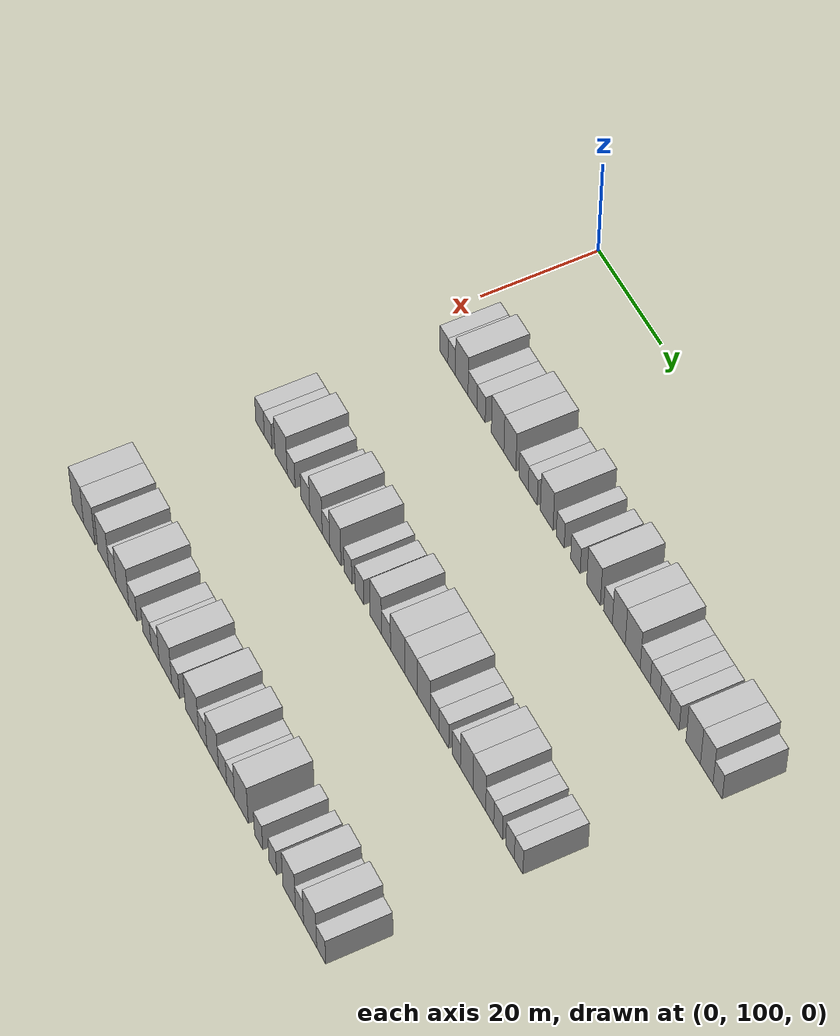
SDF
<sdf version="1.6">
 <world name="default">
  <model name="building_95">
   <static>1</static>
   <pose>25.0000 107.8113 0 0.000000 0.000000 0.000000</pose>
   <link name="link">
    <pose>0 0 3.00 0 0 0</pose>
    <collision name="collision"><geometry><box><size>10.0000 2.7142 6.0000</size></box></geometry></collision>
    <visual name="visual">
     <cast_shadows>0</cast_shadows>
     <geometry><box><size>10.0000 2.7142 6.0000</size></box></geometry>
     <material>
      <script>
       <uri>model://HANNAS_wall/materials/scripts</uri>
       <uri>model://HANNAS_wall/materials/textures</uri>
       <name>vrc/HANNAS_wall</name>
      </script>
     </material>
    </visual>
   </link>
  </model>
  <model name="building_96">
   <static>1</static>
   <pose>25.0000 110.4083 0 0.000000 0.000000 0.000000</pose>
   <link name="link">
    <pose>0 0 3.00 0 0 0</pose>
    <collision name="collision"><geometry><box><size>10.0000 2.4797 6.0000</size></box></geometry></collision>
    <visual name="visual">
     <cast_shadows>0</cast_shadows>
     <geometry><box><size>10.0000 2.4797 6.0000</size></box></geometry>
     <material>
      <script>
       <uri>model://HANNAS_wall/materials/scripts</uri>
       <uri>model://HANNAS_wall/materials/textures</uri>
       <name>vrc/HANNAS_wall</name>
      </script>
     </material>
    </visual>
   </link>
  </model>
  <model name="building_97">
   <static>1</static>
   <pose>25.0000 113.7216 0 0.000000 0.000000 0.000000</pose>
   <link name="link">
    <pose>0 0 4.50 0 0 0</pose>
    <collision name="collision"><geometry><box><size>10.0000 4.1471 9.0000</size></box></geometry></collision>
    <visual name="visual">
     <cast_shadows>0</cast_shadows>
     <geometry><box><size>10.0000 4.1471 9.0000</size></box></geometry>
     <material>
      <script>
       <uri>model://HANNAS_wall/materials/scripts</uri>
       <uri>model://HANNAS_wall/materials/textures</uri>
       <name>vrc/HANNAS_wall</name>
      </script>
     </material>
    </visual>
   </link>
  </model>
  <model name="building_98">
   <static>1</static>
   <pose>25.0000 117.2621 0 0.000000 0.000000 0.000000</pose>
   <link name="link">
    <pose>0 0 3.00 0 0 0</pose>
    <collision name="collision"><geometry><box><size>10.0000 2.9338 6.0000</size></box></geometry></collision>
    <visual name="visual">
     <cast_shadows>0</cast_shadows>
     <geometry><box><size>10.0000 2.9338 6.0000</size></box></geometry>
     <material>
      <script>
       <uri>model://HANNAS_wall/materials/scripts</uri>
       <uri>model://HANNAS_wall/materials/textures</uri>
       <name>vrc/HANNAS_wall</name>
      </script>
     </material>
    </visual>
   </link>
  </model>
  <model name="building_99">
   <static>1</static>
   <pose>25.0000 120.0552 0 0.000000 0.000000 0.000000</pose>
   <link name="link">
    <pose>0 0 3.00 0 0 0</pose>
    <collision name="collision"><geometry><box><size>10.0000 2.6524 6.0000</size></box></geometry></collision>
    <visual name="visual">
     <cast_shadows>0</cast_shadows>
     <geometry><box><size>10.0000 2.6524 6.0000</size></box></geometry>
     <material>
      <script>
       <uri>model://HANNAS_wall/materials/scripts</uri>
       <uri>model://HANNAS_wall/materials/textures</uri>
       <name>vrc/HANNAS_wall</name>
      </script>
     </material>
    </visual>
   </link>
  </model>
  <model name="building_100">
   <static>1</static>
   <pose>25.0000 125.4023 0 0.000000 0.000000 0.000000</pose>
   <link name="link">
    <pose>0 0 4.50 0 0 0</pose>
    <collision name="collision"><geometry><box><size>10.0000 4.0417 9.0000</size></box></geometry></collision>
    <visual name="visual">
     <cast_shadows>0</cast_shadows>
     <geometry><box><size>10.0000 4.0417 9.0000</size></box></geometry>
     <material>
      <script>
       <uri>model://HANNAS_wall/materials/scripts</uri>
       <uri>model://HANNAS_wall/materials/textures</uri>
       <name>vrc/HANNAS_wall</name>
      </script>
     </material>
    </visual>
   </link>
  </model>
  <model name="building_101">
   <static>1</static>
   <pose>25.0000 129.3296 0 0.000000 0.000000 0.000000</pose>
   <link name="link">
    <pose>0 0 4.50 0 0 0</pose>
    <collision name="collision"><geometry><box><size>10.0000 3.8129 9.0000</size></box></geometry></collision>
    <visual name="visual">
     <cast_shadows>0</cast_shadows>
     <geometry><box><size>10.0000 3.8129 9.0000</size></box></geometry>
     <material>
      <script>
       <uri>model://HANNAS_wall/materials/scripts</uri>
       <uri>model://HANNAS_wall/materials/textures</uri>
       <name>vrc/HANNAS_wall</name>
      </script>
     </material>
    </visual>
   </link>
  </model>
  <model name="building_102">
   <static>1</static>
   <pose>25.0000 133.7003 0 0.000000 0.000000 0.000000</pose>
   <link name="link">
    <pose>0 0 3.00 0 0 0</pose>
    <collision name="collision"><geometry><box><size>10.0000 2.9286 6.0000</size></box></geometry></collision>
    <visual name="visual">
     <cast_shadows>0</cast_shadows>
     <geometry><box><size>10.0000 2.9286 6.0000</size></box></geometry>
     <material>
      <script>
       <uri>model://HANNAS_wall/materials/scripts</uri>
       <uri>model://HANNAS_wall/materials/textures</uri>
       <name>vrc/HANNAS_wall</name>
      </script>
     </material>
    </visual>
   </link>
  </model>
  <model name="building_103">
   <static>1</static>
   <pose>25.0000 136.5817 0 0.000000 0.000000 0.000000</pose>
   <link name="link">
    <pose>0 0 3.00 0 0 0</pose>
    <collision name="collision"><geometry><box><size>10.0000 2.8342 6.0000</size></box></geometry></collision>
    <visual name="visual">
     <cast_shadows>0</cast_shadows>
     <geometry><box><size>10.0000 2.8342 6.0000</size></box></geometry>
     <material>
      <script>
       <uri>model://HANNAS_wall/materials/scripts</uri>
       <uri>model://HANNAS_wall/materials/textures</uri>
       <name>vrc/HANNAS_wall</name>
      </script>
     </material>
    </visual>
   </link>
  </model>
  <model name="building_104">
   <static>1</static>
   <pose>25.0000 140.9879 0 0.000000 0.000000 0.000000</pose>
   <link name="link">
    <pose>0 0 4.50 0 0 0</pose>
    <collision name="collision"><geometry><box><size>10.0000 3.9781 9.0000</size></box></geometry></collision>
    <visual name="visual">
     <cast_shadows>0</cast_shadows>
     <geometry><box><size>10.0000 3.9781 9.0000</size></box></geometry>
     <material>
      <script>
       <uri>model://HANNAS_wall/materials/scripts</uri>
       <uri>model://HANNAS_wall/materials/textures</uri>
       <name>vrc/HANNAS_wall</name>
      </script>
     </material>
    </visual>
   </link>
  </model>
  <model name="building_105">
   <static>1</static>
   <pose>25.0000 145.2182 0 0.000000 0.000000 0.000000</pose>
   <link name="link">
    <pose>0 0 3.00 0 0 0</pose>
    <collision name="collision"><geometry><box><size>10.0000 2.4827 6.0000</size></box></geometry></collision>
    <visual name="visual">
     <cast_shadows>0</cast_shadows>
     <geometry><box><size>10.0000 2.4827 6.0000</size></box></geometry>
     <material>
      <script>
       <uri>model://HANNAS_wall/materials/scripts</uri>
       <uri>model://HANNAS_wall/materials/textures</uri>
       <name>vrc/HANNAS_wall</name>
      </script>
     </material>
    </visual>
   </link>
  </model>
  <model name="building_106">
   <static>1</static>
   <pose>25.0000 149.9320 0 0.000000 0.000000 0.000000</pose>
   <link name="link">
    <pose>0 0 3.00 0 0 0</pose>
    <collision name="collision"><geometry><box><size>10.0000 2.9448 6.0000</size></box></geometry></collision>
    <visual name="visual">
     <cast_shadows>0</cast_shadows>
     <geometry><box><size>10.0000 2.9448 6.0000</size></box></geometry>
     <material>
      <script>
       <uri>model://HANNAS_wall/materials/scripts</uri>
       <uri>model://HANNAS_wall/materials/textures</uri>
       <name>vrc/HANNAS_wall</name>
      </script>
     </material>
    </visual>
   </link>
  </model>
  <model name="building_107">
   <static>1</static>
   <pose>25.0000 155.4893 0 0.000000 0.000000 0.000000</pose>
   <link name="link">
    <pose>0 0 4.50 0 0 0</pose>
    <collision name="collision"><geometry><box><size>10.0000 4.1698 9.0000</size></box></geometry></collision>
    <visual name="visual">
     <cast_shadows>0</cast_shadows>
     <geometry><box><size>10.0000 4.1698 9.0000</size></box></geometry>
     <material>
      <script>
       <uri>model://HANNAS_wall/materials/scripts</uri>
       <uri>model://HANNAS_wall/materials/textures</uri>
       <name>vrc/HANNAS_wall</name>
      </script>
     </material>
    </visual>
   </link>
  </model>
  <model name="building_108">
   <static>1</static>
   <pose>25.0000 159.8929 0 0.000000 0.000000 0.000000</pose>
   <link name="link">
    <pose>0 0 3.00 0 0 0</pose>
    <collision name="collision"><geometry><box><size>10.0000 2.6373 6.0000</size></box></geometry></collision>
    <visual name="visual">
     <cast_shadows>0</cast_shadows>
     <geometry><box><size>10.0000 2.6373 6.0000</size></box></geometry>
     <material>
      <script>
       <uri>model://HANNAS_wall/materials/scripts</uri>
       <uri>model://HANNAS_wall/materials/textures</uri>
       <name>vrc/HANNAS_wall</name>
      </script>
     </material>
    </visual>
   </link>
  </model>
  <model name="building_109">
   <static>1</static>
   <pose>25.0000 163.1597 0 0.000000 0.000000 0.000000</pose>
   <link name="link">
    <pose>0 0 4.50 0 0 0</pose>
    <collision name="collision"><geometry><box><size>10.0000 3.8964 9.0000</size></box></geometry></collision>
    <visual name="visual">
     <cast_shadows>0</cast_shadows>
     <geometry><box><size>10.0000 3.8964 9.0000</size></box></geometry>
     <material>
      <script>
       <uri>model://HANNAS_wall/materials/scripts</uri>
       <uri>model://HANNAS_wall/materials/textures</uri>
       <name>vrc/HANNAS_wall</name>
      </script>
     </material>
    </visual>
   </link>
  </model>
  <model name="building_110">
   <static>1</static>
   <pose>25.0000 167.3510 0 0.000000 0.000000 0.000000</pose>
   <link name="link">
    <pose>0 0 4.50 0 0 0</pose>
    <collision name="collision"><geometry><box><size>10.0000 4.4861 9.0000</size></box></geometry></collision>
    <visual name="visual">
     <cast_shadows>0</cast_shadows>
     <geometry><box><size>10.0000 4.4861 9.0000</size></box></geometry>
     <material>
      <script>
       <uri>model://HANNAS_wall/materials/scripts</uri>
       <uri>model://HANNAS_wall/materials/textures</uri>
       <name>vrc/HANNAS_wall</name>
      </script>
     </material>
    </visual>
   </link>
  </model>
  <model name="building_111">
   <static>1</static>
   <pose>25.0000 171.0859 0 0.000000 0.000000 0.000000</pose>
   <link name="link">
    <pose>0 0 3.00 0 0 0</pose>
    <collision name="collision"><geometry><box><size>10.0000 2.9837 6.0000</size></box></geometry></collision>
    <visual name="visual">
     <cast_shadows>0</cast_shadows>
     <geometry><box><size>10.0000 2.9837 6.0000</size></box></geometry>
     <material>
      <script>
       <uri>model://HANNAS_wall/materials/scripts</uri>
       <uri>model://HANNAS_wall/materials/textures</uri>
       <name>vrc/HANNAS_wall</name>
      </script>
     </material>
    </visual>
   </link>
  </model>
  <model name="building_112">
   <static>1</static>
   <pose>25.0000 174.0235 0 0.000000 0.000000 0.000000</pose>
   <link name="link">
    <pose>0 0 3.00 0 0 0</pose>
    <collision name="collision"><geometry><box><size>10.0000 2.8915 6.0000</size></box></geometry></collision>
    <visual name="visual">
     <cast_shadows>0</cast_shadows>
     <geometry><box><size>10.0000 2.8915 6.0000</size></box></geometry>
     <material>
      <script>
       <uri>model://HANNAS_wall/materials/scripts</uri>
       <uri>model://HANNAS_wall/materials/textures</uri>
       <name>vrc/HANNAS_wall</name>
      </script>
     </material>
    </visual>
   </link>
  </model>
  <model name="building_113">
   <static>1</static>
   <pose>25.0000 176.8663 0 0.000000 0.000000 0.000000</pose>
   <link name="link">
    <pose>0 0 3.00 0 0 0</pose>
    <collision name="collision"><geometry><box><size>10.0000 2.7941 6.0000</size></box></geometry></collision>
    <visual name="visual">
     <cast_shadows>0</cast_shadows>
     <geometry><box><size>10.0000 2.7941 6.0000</size></box></geometry>
     <material>
      <script>
       <uri>model://HANNAS_wall/materials/scripts</uri>
       <uri>model://HANNAS_wall/materials/textures</uri>
       <name>vrc/HANNAS_wall</name>
      </script>
     </material>
    </visual>
   </link>
  </model>
  <model name="building_114">
   <static>1</static>
   <pose>25.0000 179.6664 0 0.000000 0.000000 0.000000</pose>
   <link name="link">
    <pose>0 0 3.00 0 0 0</pose>
    <collision name="collision"><geometry><box><size>10.0000 2.8062 6.0000</size></box></geometry></collision>
    <visual name="visual">
     <cast_shadows>0</cast_shadows>
     <geometry><box><size>10.0000 2.8062 6.0000</size></box></geometry>
     <material>
      <script>
       <uri>model://HANNAS_wall/materials/scripts</uri>
       <uri>model://HANNAS_wall/materials/textures</uri>
       <name>vrc/HANNAS_wall</name>
      </script>
     </material>
    </visual>
   </link>
  </model>
  <model name="building_115">
   <static>1</static>
   <pose>25.0000 185.1760 0 0.000000 0.000000 0.000000</pose>
   <link name="link">
    <pose>0 0 4.50 0 0 0</pose>
    <collision name="collision"><geometry><box><size>10.0000 4.2129 9.0000</size></box></geometry></collision>
    <visual name="visual">
     <cast_shadows>0</cast_shadows>
     <geometry><box><size>10.0000 4.2129 9.0000</size></box></geometry>
     <material>
      <script>
       <uri>model://HANNAS_wall/materials/scripts</uri>
       <uri>model://HANNAS_wall/materials/textures</uri>
       <name>vrc/HANNAS_wall</name>
      </script>
     </material>
    </visual>
   </link>
  </model>
  <model name="building_116">
   <static>1</static>
   <pose>25.0000 189.0975 0 0.000000 0.000000 0.000000</pose>
   <link name="link">
    <pose>0 0 4.50 0 0 0</pose>
    <collision name="collision"><geometry><box><size>10.0000 3.6302 9.0000</size></box></geometry></collision>
    <visual name="visual">
     <cast_shadows>0</cast_shadows>
     <geometry><box><size>10.0000 3.6302 9.0000</size></box></geometry>
     <material>
      <script>
       <uri>model://HANNAS_wall/materials/scripts</uri>
       <uri>model://HANNAS_wall/materials/textures</uri>
       <name>vrc/HANNAS_wall</name>
      </script>
     </material>
    </visual>
   </link>
  </model>
  <model name="building_117">
   <static>1</static>
   <pose>25.0000 192.2363 0 0.000000 0.000000 0.000000</pose>
   <link name="link">
    <pose>0 0 3.00 0 0 0</pose>
    <collision name="collision"><geometry><box><size>10.0000 2.6473 6.0000</size></box></geometry></collision>
    <visual name="visual">
     <cast_shadows>0</cast_shadows>
     <geometry><box><size>10.0000 2.6473 6.0000</size></box></geometry>
     <material>
      <script>
       <uri>model://HANNAS_wall/materials/scripts</uri>
       <uri>model://HANNAS_wall/materials/textures</uri>
       <name>vrc/HANNAS_wall</name>
      </script>
     </material>
    </visual>
   </link>
  </model>
  <model name="building_234">
   <static>1</static>
   <pose>55.0000 107.7958 0 0.000000 0.000000 0.000000</pose>
   <link name="link">
    <pose>0 0 3.00 0 0 0</pose>
    <collision name="collision"><geometry><box><size>10.0000 2.9453 6.0000</size></box></geometry></collision>
    <visual name="visual">
     <cast_shadows>0</cast_shadows>
     <geometry><box><size>10.0000 2.9453 6.0000</size></box></geometry>
     <material>
      <script>
       <uri>model://HANNAS_wall/materials/scripts</uri>
       <uri>model://HANNAS_wall/materials/textures</uri>
       <name>vrc/HANNAS_wall</name>
      </script>
     </material>
    </visual>
   </link>
  </model>
  <model name="building_235">
   <static>1</static>
   <pose>55.0000 110.5906 0 0.000000 0.000000 0.000000</pose>
   <link name="link">
    <pose>0 0 3.00 0 0 0</pose>
    <collision name="collision"><geometry><box><size>10.0000 2.6444 6.0000</size></box></geometry></collision>
    <visual name="visual">
     <cast_shadows>0</cast_shadows>
     <geometry><box><size>10.0000 2.6444 6.0000</size></box></geometry>
     <material>
      <script>
       <uri>model://HANNAS_wall/materials/scripts</uri>
       <uri>model://HANNAS_wall/materials/textures</uri>
       <name>vrc/HANNAS_wall</name>
      </script>
     </material>
    </visual>
   </link>
  </model>
  <model name="building_236">
   <static>1</static>
   <pose>55.0000 114.9920 0 0.000000 0.000000 0.000000</pose>
   <link name="link">
    <pose>0 0 4.50 0 0 0</pose>
    <collision name="collision"><geometry><box><size>10.0000 4.1583 9.0000</size></box></geometry></collision>
    <visual name="visual">
     <cast_shadows>0</cast_shadows>
     <geometry><box><size>10.0000 4.1583 9.0000</size></box></geometry>
     <material>
      <script>
       <uri>model://HANNAS_wall/materials/scripts</uri>
       <uri>model://HANNAS_wall/materials/textures</uri>
       <name>vrc/HANNAS_wall</name>
      </script>
     </material>
    </visual>
   </link>
  </model>
  <model name="building_237">
   <static>1</static>
   <pose>55.0000 118.4167 0 0.000000 0.000000 0.000000</pose>
   <link name="link">
    <pose>0 0 3.00 0 0 0</pose>
    <collision name="collision"><geometry><box><size>10.0000 2.6911 6.0000</size></box></geometry></collision>
    <visual name="visual">
     <cast_shadows>0</cast_shadows>
     <geometry><box><size>10.0000 2.6911 6.0000</size></box></geometry>
     <material>
      <script>
       <uri>model://HANNAS_wall/materials/scripts</uri>
       <uri>model://HANNAS_wall/materials/textures</uri>
       <name>vrc/HANNAS_wall</name>
      </script>
     </material>
    </visual>
   </link>
  </model>
  <model name="building_238">
   <static>1</static>
   <pose>55.0000 123.2389 0 0.000000 0.000000 0.000000</pose>
   <link name="link">
    <pose>0 0 3.00 0 0 0</pose>
    <collision name="collision"><geometry><box><size>10.0000 2.9533 6.0000</size></box></geometry></collision>
    <visual name="visual">
     <cast_shadows>0</cast_shadows>
     <geometry><box><size>10.0000 2.9533 6.0000</size></box></geometry>
     <material>
      <script>
       <uri>model://HANNAS_wall/materials/scripts</uri>
       <uri>model://HANNAS_wall/materials/textures</uri>
       <name>vrc/HANNAS_wall</name>
      </script>
     </material>
    </visual>
   </link>
  </model>
  <model name="building_239">
   <static>1</static>
   <pose>55.0000 126.8112 0 0.000000 0.000000 0.000000</pose>
   <link name="link">
    <pose>0 0 4.50 0 0 0</pose>
    <collision name="collision"><geometry><box><size>10.0000 4.1912 9.0000</size></box></geometry></collision>
    <visual name="visual">
     <cast_shadows>0</cast_shadows>
     <geometry><box><size>10.0000 4.1912 9.0000</size></box></geometry>
     <material>
      <script>
       <uri>model://HANNAS_wall/materials/scripts</uri>
       <uri>model://HANNAS_wall/materials/textures</uri>
       <name>vrc/HANNAS_wall</name>
      </script>
     </material>
    </visual>
   </link>
  </model>
  <model name="building_240">
   <static>1</static>
   <pose>55.0000 130.1512 0 0.000000 0.000000 0.000000</pose>
   <link name="link">
    <pose>0 0 3.00 0 0 0</pose>
    <collision name="collision"><geometry><box><size>10.0000 2.4889 6.0000</size></box></geometry></collision>
    <visual name="visual">
     <cast_shadows>0</cast_shadows>
     <geometry><box><size>10.0000 2.4889 6.0000</size></box></geometry>
     <material>
      <script>
       <uri>model://HANNAS_wall/materials/scripts</uri>
       <uri>model://HANNAS_wall/materials/textures</uri>
       <name>vrc/HANNAS_wall</name>
      </script>
     </material>
    </visual>
   </link>
  </model>
  <model name="building_241">
   <static>1</static>
   <pose>55.0000 133.2506 0 0.000000 0.000000 0.000000</pose>
   <link name="link">
    <pose>0 0 4.50 0 0 0</pose>
    <collision name="collision"><geometry><box><size>10.0000 3.7098 9.0000</size></box></geometry></collision>
    <visual name="visual">
     <cast_shadows>0</cast_shadows>
     <geometry><box><size>10.0000 3.7098 9.0000</size></box></geometry>
     <material>
      <script>
       <uri>model://HANNAS_wall/materials/scripts</uri>
       <uri>model://HANNAS_wall/materials/textures</uri>
       <name>vrc/HANNAS_wall</name>
      </script>
     </material>
    </visual>
   </link>
  </model>
  <model name="building_242">
   <static>1</static>
   <pose>55.0000 137.4039 0 0.000000 0.000000 0.000000</pose>
   <link name="link">
    <pose>0 0 3.00 0 0 0</pose>
    <collision name="collision"><geometry><box><size>10.0000 2.5968 6.0000</size></box></geometry></collision>
    <visual name="visual">
     <cast_shadows>0</cast_shadows>
     <geometry><box><size>10.0000 2.5968 6.0000</size></box></geometry>
     <material>
      <script>
       <uri>model://HANNAS_wall/materials/scripts</uri>
       <uri>model://HANNAS_wall/materials/textures</uri>
       <name>vrc/HANNAS_wall</name>
      </script>
     </material>
    </visual>
   </link>
  </model>
  <model name="building_243">
   <static>1</static>
   <pose>55.0000 141.1579 0 0.000000 0.000000 0.000000</pose>
   <link name="link">
    <pose>0 0 3.00 0 0 0</pose>
    <collision name="collision"><geometry><box><size>10.0000 2.9113 6.0000</size></box></geometry></collision>
    <visual name="visual">
     <cast_shadows>0</cast_shadows>
     <geometry><box><size>10.0000 2.9113 6.0000</size></box></geometry>
     <material>
      <script>
       <uri>model://HANNAS_wall/materials/scripts</uri>
       <uri>model://HANNAS_wall/materials/textures</uri>
       <name>vrc/HANNAS_wall</name>
      </script>
     </material>
    </visual>
   </link>
  </model>
  <model name="building_244">
   <static>1</static>
   <pose>55.0000 146.4562 0 0.000000 0.000000 0.000000</pose>
   <link name="link">
    <pose>0 0 4.50 0 0 0</pose>
    <collision name="collision"><geometry><box><size>10.0000 3.6852 9.0000</size></box></geometry></collision>
    <visual name="visual">
     <cast_shadows>0</cast_shadows>
     <geometry><box><size>10.0000 3.6852 9.0000</size></box></geometry>
     <material>
      <script>
       <uri>model://HANNAS_wall/materials/scripts</uri>
       <uri>model://HANNAS_wall/materials/textures</uri>
       <name>vrc/HANNAS_wall</name>
      </script>
     </material>
    </visual>
   </link>
  </model>
  <model name="building_245">
   <static>1</static>
   <pose>55.0000 149.7642 0 0.000000 0.000000 0.000000</pose>
   <link name="link">
    <pose>0 0 3.00 0 0 0</pose>
    <collision name="collision"><geometry><box><size>10.0000 2.9308 6.0000</size></box></geometry></collision>
    <visual name="visual">
     <cast_shadows>0</cast_shadows>
     <geometry><box><size>10.0000 2.9308 6.0000</size></box></geometry>
     <material>
      <script>
       <uri>model://HANNAS_wall/materials/scripts</uri>
       <uri>model://HANNAS_wall/materials/textures</uri>
       <name>vrc/HANNAS_wall</name>
      </script>
     </material>
    </visual>
   </link>
  </model>
  <model name="building_246">
   <static>1</static>
   <pose>55.0000 153.4788 0 0.000000 0.000000 0.000000</pose>
   <link name="link">
    <pose>0 0 4.50 0 0 0</pose>
    <collision name="collision"><geometry><box><size>10.0000 4.4985 9.0000</size></box></geometry></collision>
    <visual name="visual">
     <cast_shadows>0</cast_shadows>
     <geometry><box><size>10.0000 4.4985 9.0000</size></box></geometry>
     <material>
      <script>
       <uri>model://HANNAS_wall/materials/scripts</uri>
       <uri>model://HANNAS_wall/materials/textures</uri>
       <name>vrc/HANNAS_wall</name>
      </script>
     </material>
    </visual>
   </link>
  </model>
  <model name="building_247">
   <static>1</static>
   <pose>55.0000 157.6905 0 0.000000 0.000000 0.000000</pose>
   <link name="link">
    <pose>0 0 4.50 0 0 0</pose>
    <collision name="collision"><geometry><box><size>10.0000 3.9249 9.0000</size></box></geometry></collision>
    <visual name="visual">
     <cast_shadows>0</cast_shadows>
     <geometry><box><size>10.0000 3.9249 9.0000</size></box></geometry>
     <material>
      <script>
       <uri>model://HANNAS_wall/materials/scripts</uri>
       <uri>model://HANNAS_wall/materials/textures</uri>
       <name>vrc/HANNAS_wall</name>
      </script>
     </material>
    </visual>
   </link>
  </model>
  <model name="building_248">
   <static>1</static>
   <pose>55.0000 161.7054 0 0.000000 0.000000 0.000000</pose>
   <link name="link">
    <pose>0 0 4.50 0 0 0</pose>
    <collision name="collision"><geometry><box><size>10.0000 4.1050 9.0000</size></box></geometry></collision>
    <visual name="visual">
     <cast_shadows>0</cast_shadows>
     <geometry><box><size>10.0000 4.1050 9.0000</size></box></geometry>
     <material>
      <script>
       <uri>model://HANNAS_wall/materials/scripts</uri>
       <uri>model://HANNAS_wall/materials/textures</uri>
       <name>vrc/HANNAS_wall</name>
      </script>
     </material>
    </visual>
   </link>
  </model>
  <model name="building_249">
   <static>1</static>
   <pose>55.0000 165.1675 0 0.000000 0.000000 0.000000</pose>
   <link name="link">
    <pose>0 0 3.00 0 0 0</pose>
    <collision name="collision"><geometry><box><size>10.0000 2.8191 6.0000</size></box></geometry></collision>
    <visual name="visual">
     <cast_shadows>0</cast_shadows>
     <geometry><box><size>10.0000 2.8191 6.0000</size></box></geometry>
     <material>
      <script>
       <uri>model://HANNAS_wall/materials/scripts</uri>
       <uri>model://HANNAS_wall/materials/textures</uri>
       <name>vrc/HANNAS_wall</name>
      </script>
     </material>
    </visual>
   </link>
  </model>
  <model name="building_250">
   <static>1</static>
   <pose>55.0000 168.0660 0 0.000000 0.000000 0.000000</pose>
   <link name="link">
    <pose>0 0 3.00 0 0 0</pose>
    <collision name="collision"><geometry><box><size>10.0000 2.9779 6.0000</size></box></geometry></collision>
    <visual name="visual">
     <cast_shadows>0</cast_shadows>
     <geometry><box><size>10.0000 2.9779 6.0000</size></box></geometry>
     <material>
      <script>
       <uri>model://HANNAS_wall/materials/scripts</uri>
       <uri>model://HANNAS_wall/materials/textures</uri>
       <name>vrc/HANNAS_wall</name>
      </script>
     </material>
    </visual>
   </link>
  </model>
  <model name="building_251">
   <static>1</static>
   <pose>55.0000 171.8572 0 0.000000 0.000000 0.000000</pose>
   <link name="link">
    <pose>0 0 3.00 0 0 0</pose>
    <collision name="collision"><geometry><box><size>10.0000 2.6045 6.0000</size></box></geometry></collision>
    <visual name="visual">
     <cast_shadows>0</cast_shadows>
     <geometry><box><size>10.0000 2.6045 6.0000</size></box></geometry>
     <material>
      <script>
       <uri>model://HANNAS_wall/materials/scripts</uri>
       <uri>model://HANNAS_wall/materials/textures</uri>
       <name>vrc/HANNAS_wall</name>
      </script>
     </material>
    </visual>
   </link>
  </model>
  <model name="building_252">
   <static>1</static>
   <pose>55.0000 175.0984 0 0.000000 0.000000 0.000000</pose>
   <link name="link">
    <pose>0 0 4.50 0 0 0</pose>
    <collision name="collision"><geometry><box><size>10.0000 3.8780 9.0000</size></box></geometry></collision>
    <visual name="visual">
     <cast_shadows>0</cast_shadows>
     <geometry><box><size>10.0000 3.8780 9.0000</size></box></geometry>
     <material>
      <script>
       <uri>model://HANNAS_wall/materials/scripts</uri>
       <uri>model://HANNAS_wall/materials/textures</uri>
       <name>vrc/HANNAS_wall</name>
      </script>
     </material>
    </visual>
   </link>
  </model>
  <model name="building_253">
   <static>1</static>
   <pose>55.0000 178.9706 0 0.000000 0.000000 0.000000</pose>
   <link name="link">
    <pose>0 0 4.50 0 0 0</pose>
    <collision name="collision"><geometry><box><size>10.0000 3.8664 9.0000</size></box></geometry></collision>
    <visual name="visual">
     <cast_shadows>0</cast_shadows>
     <geometry><box><size>10.0000 3.8664 9.0000</size></box></geometry>
     <material>
      <script>
       <uri>model://HANNAS_wall/materials/scripts</uri>
       <uri>model://HANNAS_wall/materials/textures</uri>
       <name>vrc/HANNAS_wall</name>
      </script>
     </material>
    </visual>
   </link>
  </model>
  <model name="building_254">
   <static>1</static>
   <pose>55.0000 182.1245 0 0.000000 0.000000 0.000000</pose>
   <link name="link">
    <pose>0 0 3.00 0 0 0</pose>
    <collision name="collision"><geometry><box><size>10.0000 2.4413 6.0000</size></box></geometry></collision>
    <visual name="visual">
     <cast_shadows>0</cast_shadows>
     <geometry><box><size>10.0000 2.4413 6.0000</size></box></geometry>
     <material>
      <script>
       <uri>model://HANNAS_wall/materials/scripts</uri>
       <uri>model://HANNAS_wall/materials/textures</uri>
       <name>vrc/HANNAS_wall</name>
      </script>
     </material>
    </visual>
   </link>
  </model>
  <model name="building_255">
   <static>1</static>
   <pose>55.0000 184.6578 0 0.000000 0.000000 0.000000</pose>
   <link name="link">
    <pose>0 0 3.00 0 0 0</pose>
    <collision name="collision"><geometry><box><size>10.0000 2.6255 6.0000</size></box></geometry></collision>
    <visual name="visual">
     <cast_shadows>0</cast_shadows>
     <geometry><box><size>10.0000 2.6255 6.0000</size></box></geometry>
     <material>
      <script>
       <uri>model://HANNAS_wall/materials/scripts</uri>
       <uri>model://HANNAS_wall/materials/textures</uri>
       <name>vrc/HANNAS_wall</name>
      </script>
     </material>
    </visual>
   </link>
  </model>
  <model name="building_256">
   <static>1</static>
   <pose>55.0000 188.2597 0 0.000000 0.000000 0.000000</pose>
   <link name="link">
    <pose>0 0 3.00 0 0 0</pose>
    <collision name="collision"><geometry><box><size>10.0000 2.5782 6.0000</size></box></geometry></collision>
    <visual name="visual">
     <cast_shadows>0</cast_shadows>
     <geometry><box><size>10.0000 2.5782 6.0000</size></box></geometry>
     <material>
      <script>
       <uri>model://HANNAS_wall/materials/scripts</uri>
       <uri>model://HANNAS_wall/materials/textures</uri>
       <name>vrc/HANNAS_wall</name>
      </script>
     </material>
    </visual>
   </link>
  </model>
  <model name="building_257">
   <static>1</static>
   <pose>55.0000 190.8240 0 0.000000 0.000000 0.000000</pose>
   <link name="link">
    <pose>0 0 3.00 0 0 0</pose>
    <collision name="collision"><geometry><box><size>10.0000 2.5504 6.0000</size></box></geometry></collision>
    <visual name="visual">
     <cast_shadows>0</cast_shadows>
     <geometry><box><size>10.0000 2.5504 6.0000</size></box></geometry>
     <material>
      <script>
       <uri>model://HANNAS_wall/materials/scripts</uri>
       <uri>model://HANNAS_wall/materials/textures</uri>
       <name>vrc/HANNAS_wall</name>
      </script>
     </material>
    </visual>
   </link>
  </model>
  <model name="building_367">
   <static>1</static>
   <pose>85.0000 110.0875 0 0.000000 0.000000 0.000000</pose>
   <link name="link">
    <pose>0 0 4.50 0 0 0</pose>
    <collision name="collision"><geometry><box><size>10.0000 4.0810 9.0000</size></box></geometry></collision>
    <visual name="visual">
     <cast_shadows>0</cast_shadows>
     <geometry><box><size>10.0000 4.0810 9.0000</size></box></geometry>
     <material>
      <script>
       <uri>model://HANNAS_wall/materials/scripts</uri>
       <uri>model://HANNAS_wall/materials/textures</uri>
       <name>vrc/HANNAS_wall</name>
      </script>
     </material>
    </visual>
   </link>
  </model>
  <model name="building_368">
   <static>1</static>
   <pose>85.0000 114.1532 0 0.000000 0.000000 0.000000</pose>
   <link name="link">
    <pose>0 0 4.50 0 0 0</pose>
    <collision name="collision"><geometry><box><size>10.0000 4.0504 9.0000</size></box></geometry></collision>
    <visual name="visual">
     <cast_shadows>0</cast_shadows>
     <geometry><box><size>10.0000 4.0504 9.0000</size></box></geometry>
     <material>
      <script>
       <uri>model://HANNAS_wall/materials/scripts</uri>
       <uri>model://HANNAS_wall/materials/textures</uri>
       <name>vrc/HANNAS_wall</name>
      </script>
     </material>
    </visual>
   </link>
  </model>
  <model name="building_369">
   <static>1</static>
   <pose>85.0000 119.1474 0 0.000000 0.000000 0.000000</pose>
   <link name="link">
    <pose>0 0 4.50 0 0 0</pose>
    <collision name="collision"><geometry><box><size>10.0000 3.9379 9.0000</size></box></geometry></collision>
    <visual name="visual">
     <cast_shadows>0</cast_shadows>
     <geometry><box><size>10.0000 3.9379 9.0000</size></box></geometry>
     <material>
      <script>
       <uri>model://HANNAS_wall/materials/scripts</uri>
       <uri>model://HANNAS_wall/materials/textures</uri>
       <name>vrc/HANNAS_wall</name>
      </script>
     </material>
    </visual>
   </link>
  </model>
  <model name="building_370">
   <static>1</static>
   <pose>85.0000 122.4041 0 0.000000 0.000000 0.000000</pose>
   <link name="link">
    <pose>0 0 3.00 0 0 0</pose>
    <collision name="collision"><geometry><box><size>10.0000 2.5754 6.0000</size></box></geometry></collision>
    <visual name="visual">
     <cast_shadows>0</cast_shadows>
     <geometry><box><size>10.0000 2.5754 6.0000</size></box></geometry>
     <material>
      <script>
       <uri>model://HANNAS_wall/materials/scripts</uri>
       <uri>model://HANNAS_wall/materials/textures</uri>
       <name>vrc/HANNAS_wall</name>
      </script>
     </material>
    </visual>
   </link>
  </model>
  <model name="building_371">
   <static>1</static>
   <pose>85.0000 125.8906 0 0.000000 0.000000 0.000000</pose>
   <link name="link">
    <pose>0 0 4.50 0 0 0</pose>
    <collision name="collision"><geometry><box><size>10.0000 4.3977 9.0000</size></box></geometry></collision>
    <visual name="visual">
     <cast_shadows>0</cast_shadows>
     <geometry><box><size>10.0000 4.3977 9.0000</size></box></geometry>
     <material>
      <script>
       <uri>model://HANNAS_wall/materials/scripts</uri>
       <uri>model://HANNAS_wall/materials/textures</uri>
       <name>vrc/HANNAS_wall</name>
      </script>
     </material>
    </visual>
   </link>
  </model>
  <model name="building_372">
   <static>1</static>
   <pose>85.0000 129.5220 0 0.000000 0.000000 0.000000</pose>
   <link name="link">
    <pose>0 0 3.00 0 0 0</pose>
    <collision name="collision"><geometry><box><size>10.0000 2.8650 6.0000</size></box></geometry></collision>
    <visual name="visual">
     <cast_shadows>0</cast_shadows>
     <geometry><box><size>10.0000 2.8650 6.0000</size></box></geometry>
     <material>
      <script>
       <uri>model://HANNAS_wall/materials/scripts</uri>
       <uri>model://HANNAS_wall/materials/textures</uri>
       <name>vrc/HANNAS_wall</name>
      </script>
     </material>
    </visual>
   </link>
  </model>
  <model name="building_373">
   <static>1</static>
   <pose>85.0000 134.4018 0 0.000000 0.000000 0.000000</pose>
   <link name="link">
    <pose>0 0 3.00 0 0 0</pose>
    <collision name="collision"><geometry><box><size>10.0000 2.8948 6.0000</size></box></geometry></collision>
    <visual name="visual">
     <cast_shadows>0</cast_shadows>
     <geometry><box><size>10.0000 2.8948 6.0000</size></box></geometry>
     <material>
      <script>
       <uri>model://HANNAS_wall/materials/scripts</uri>
       <uri>model://HANNAS_wall/materials/textures</uri>
       <name>vrc/HANNAS_wall</name>
      </script>
     </material>
    </visual>
   </link>
  </model>
  <model name="building_374">
   <static>1</static>
   <pose>85.0000 137.2217 0 0.000000 0.000000 0.000000</pose>
   <link name="link">
    <pose>0 0 3.00 0 0 0</pose>
    <collision name="collision"><geometry><box><size>10.0000 2.7450 6.0000</size></box></geometry></collision>
    <visual name="visual">
     <cast_shadows>0</cast_shadows>
     <geometry><box><size>10.0000 2.7450 6.0000</size></box></geometry>
     <material>
      <script>
       <uri>model://HANNAS_wall/materials/scripts</uri>
       <uri>model://HANNAS_wall/materials/textures</uri>
       <name>vrc/HANNAS_wall</name>
      </script>
     </material>
    </visual>
   </link>
  </model>
  <model name="building_375">
   <static>1</static>
   <pose>85.0000 140.7446 0 0.000000 0.000000 0.000000</pose>
   <link name="link">
    <pose>0 0 4.50 0 0 0</pose>
    <collision name="collision"><geometry><box><size>10.0000 4.3008 9.0000</size></box></geometry></collision>
    <visual name="visual">
     <cast_shadows>0</cast_shadows>
     <geometry><box><size>10.0000 4.3008 9.0000</size></box></geometry>
     <material>
      <script>
       <uri>model://HANNAS_wall/materials/scripts</uri>
       <uri>model://HANNAS_wall/materials/textures</uri>
       <name>vrc/HANNAS_wall</name>
      </script>
     </material>
    </visual>
   </link>
  </model>
  <model name="building_376">
   <static>1</static>
   <pose>85.0000 144.2195 0 0.000000 0.000000 0.000000</pose>
   <link name="link">
    <pose>0 0 3.00 0 0 0</pose>
    <collision name="collision"><geometry><box><size>10.0000 2.6490 6.0000</size></box></geometry></collision>
    <visual name="visual">
     <cast_shadows>0</cast_shadows>
     <geometry><box><size>10.0000 2.6490 6.0000</size></box></geometry>
     <material>
      <script>
       <uri>model://HANNAS_wall/materials/scripts</uri>
       <uri>model://HANNAS_wall/materials/textures</uri>
       <name>vrc/HANNAS_wall</name>
      </script>
     </material>
    </visual>
   </link>
  </model>
  <model name="building_377">
   <static>1</static>
   <pose>85.0000 149.7637 0 0.000000 0.000000 0.000000</pose>
   <link name="link">
    <pose>0 0 4.50 0 0 0</pose>
    <collision name="collision"><geometry><box><size>10.0000 4.4394 9.0000</size></box></geometry></collision>
    <visual name="visual">
     <cast_shadows>0</cast_shadows>
     <geometry><box><size>10.0000 4.4394 9.0000</size></box></geometry>
     <material>
      <script>
       <uri>model://HANNAS_wall/materials/scripts</uri>
       <uri>model://HANNAS_wall/materials/textures</uri>
       <name>vrc/HANNAS_wall</name>
      </script>
     </material>
    </visual>
   </link>
  </model>
  <model name="building_378">
   <static>1</static>
   <pose>85.0000 153.3556 0 0.000000 0.000000 0.000000</pose>
   <link name="link">
    <pose>0 0 3.00 0 0 0</pose>
    <collision name="collision"><geometry><box><size>10.0000 2.7444 6.0000</size></box></geometry></collision>
    <visual name="visual">
     <cast_shadows>0</cast_shadows>
     <geometry><box><size>10.0000 2.7444 6.0000</size></box></geometry>
     <material>
      <script>
       <uri>model://HANNAS_wall/materials/scripts</uri>
       <uri>model://HANNAS_wall/materials/textures</uri>
       <name>vrc/HANNAS_wall</name>
      </script>
     </material>
    </visual>
   </link>
  </model>
  <model name="building_379">
   <static>1</static>
   <pose>85.0000 156.6523 0 0.000000 0.000000 0.000000</pose>
   <link name="link">
    <pose>0 0 4.50 0 0 0</pose>
    <collision name="collision"><geometry><box><size>10.0000 3.8489 9.0000</size></box></geometry></collision>
    <visual name="visual">
     <cast_shadows>0</cast_shadows>
     <geometry><box><size>10.0000 3.8489 9.0000</size></box></geometry>
     <material>
      <script>
       <uri>model://HANNAS_wall/materials/scripts</uri>
       <uri>model://HANNAS_wall/materials/textures</uri>
       <name>vrc/HANNAS_wall</name>
      </script>
     </material>
    </visual>
   </link>
  </model>
  <model name="building_380">
   <static>1</static>
   <pose>85.0000 159.9048 0 0.000000 0.000000 0.000000</pose>
   <link name="link">
    <pose>0 0 3.00 0 0 0</pose>
    <collision name="collision"><geometry><box><size>10.0000 2.6561 6.0000</size></box></geometry></collision>
    <visual name="visual">
     <cast_shadows>0</cast_shadows>
     <geometry><box><size>10.0000 2.6561 6.0000</size></box></geometry>
     <material>
      <script>
       <uri>model://HANNAS_wall/materials/scripts</uri>
       <uri>model://HANNAS_wall/materials/textures</uri>
       <name>vrc/HANNAS_wall</name>
      </script>
     </material>
    </visual>
   </link>
  </model>
  <model name="building_381">
   <static>1</static>
   <pose>85.0000 162.5584 0 0.000000 0.000000 0.000000</pose>
   <link name="link">
    <pose>0 0 3.00 0 0 0</pose>
    <collision name="collision"><geometry><box><size>10.0000 2.6511 6.0000</size></box></geometry></collision>
    <visual name="visual">
     <cast_shadows>0</cast_shadows>
     <geometry><box><size>10.0000 2.6511 6.0000</size></box></geometry>
     <material>
      <script>
       <uri>model://HANNAS_wall/materials/scripts</uri>
       <uri>model://HANNAS_wall/materials/textures</uri>
       <name>vrc/HANNAS_wall</name>
      </script>
     </material>
    </visual>
   </link>
  </model>
  <model name="building_382">
   <static>1</static>
   <pose>85.0000 166.1006 0 0.000000 0.000000 0.000000</pose>
   <link name="link">
    <pose>0 0 4.50 0 0 0</pose>
    <collision name="collision"><geometry><box><size>10.0000 4.4335 9.0000</size></box></geometry></collision>
    <visual name="visual">
     <cast_shadows>0</cast_shadows>
     <geometry><box><size>10.0000 4.4335 9.0000</size></box></geometry>
     <material>
      <script>
       <uri>model://HANNAS_wall/materials/scripts</uri>
       <uri>model://HANNAS_wall/materials/textures</uri>
       <name>vrc/HANNAS_wall</name>
      </script>
     </material>
    </visual>
   </link>
  </model>
  <model name="building_383">
   <static>1</static>
   <pose>85.0000 171.6487 0 0.000000 0.000000 0.000000</pose>
   <link name="link">
    <pose>0 0 3.00 0 0 0</pose>
    <collision name="collision"><geometry><box><size>10.0000 2.6627 6.0000</size></box></geometry></collision>
    <visual name="visual">
     <cast_shadows>0</cast_shadows>
     <geometry><box><size>10.0000 2.6627 6.0000</size></box></geometry>
     <material>
      <script>
       <uri>model://HANNAS_wall/materials/scripts</uri>
       <uri>model://HANNAS_wall/materials/textures</uri>
       <name>vrc/HANNAS_wall</name>
      </script>
     </material>
    </visual>
   </link>
  </model>
  <model name="building_384">
   <static>1</static>
   <pose>85.0000 176.1998 0 0.000000 0.000000 0.000000</pose>
   <link name="link">
    <pose>0 0 3.00 0 0 0</pose>
    <collision name="collision"><geometry><box><size>10.0000 2.4395 6.0000</size></box></geometry></collision>
    <visual name="visual">
     <cast_shadows>0</cast_shadows>
     <geometry><box><size>10.0000 2.4395 6.0000</size></box></geometry>
     <material>
      <script>
       <uri>model://HANNAS_wall/materials/scripts</uri>
       <uri>model://HANNAS_wall/materials/textures</uri>
       <name>vrc/HANNAS_wall</name>
      </script>
     </material>
    </visual>
   </link>
  </model>
  <model name="building_385">
   <static>1</static>
   <pose>85.0000 181.4068 0 0.000000 0.000000 0.000000</pose>
   <link name="link">
    <pose>0 0 4.50 0 0 0</pose>
    <collision name="collision"><geometry><box><size>10.0000 3.9745 9.0000</size></box></geometry></collision>
    <visual name="visual">
     <cast_shadows>0</cast_shadows>
     <geometry><box><size>10.0000 3.9745 9.0000</size></box></geometry>
     <material>
      <script>
       <uri>model://HANNAS_wall/materials/scripts</uri>
       <uri>model://HANNAS_wall/materials/textures</uri>
       <name>vrc/HANNAS_wall</name>
      </script>
     </material>
    </visual>
   </link>
  </model>
  <model name="building_386">
   <static>1</static>
   <pose>85.0000 184.6731 0 0.000000 0.000000 0.000000</pose>
   <link name="link">
    <pose>0 0 3.00 0 0 0</pose>
    <collision name="collision"><geometry><box><size>10.0000 2.5583 6.0000</size></box></geometry></collision>
    <visual name="visual">
     <cast_shadows>0</cast_shadows>
     <geometry><box><size>10.0000 2.5583 6.0000</size></box></geometry>
     <material>
      <script>
       <uri>model://HANNAS_wall/materials/scripts</uri>
       <uri>model://HANNAS_wall/materials/textures</uri>
       <name>vrc/HANNAS_wall</name>
      </script>
     </material>
    </visual>
   </link>
  </model>
  <model name="building_387">
   <static>1</static>
   <pose>85.0000 187.9992 0 0.000000 0.000000 0.000000</pose>
   <link name="link">
    <pose>0 0 4.50 0 0 0</pose>
    <collision name="collision"><geometry><box><size>10.0000 4.0940 9.0000</size></box></geometry></collision>
    <visual name="visual">
     <cast_shadows>0</cast_shadows>
     <geometry><box><size>10.0000 4.0940 9.0000</size></box></geometry>
     <material>
      <script>
       <uri>model://HANNAS_wall/materials/scripts</uri>
       <uri>model://HANNAS_wall/materials/textures</uri>
       <name>vrc/HANNAS_wall</name>
      </script>
     </material>
    </visual>
   </link>
  </model>
  <model name="building_388">
   <static>1</static>
   <pose>85.0000 191.4476 0 0.000000 0.000000 0.000000</pose>
   <link name="link">
    <pose>0 0 3.00 0 0 0</pose>
    <collision name="collision"><geometry><box><size>10.0000 2.8027 6.0000</size></box></geometry></collision>
    <visual name="visual">
     <cast_shadows>0</cast_shadows>
     <geometry><box><size>10.0000 2.8027 6.0000</size></box></geometry>
     <material>
      <script>
       <uri>model://HANNAS_wall/materials/scripts</uri>
       <uri>model://HANNAS_wall/materials/textures</uri>
       <name>vrc/HANNAS_wall</name>
      </script>
     </material>
    </visual>
   </link>
  </model>
 </world>
</sdf>
